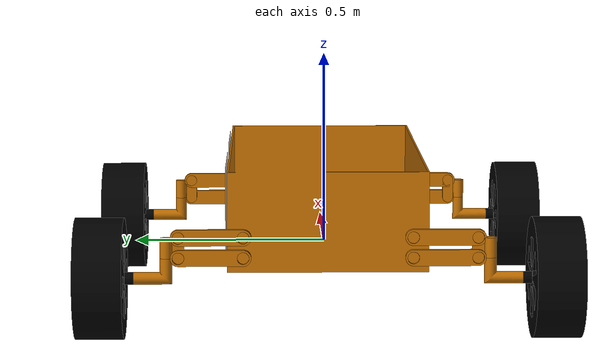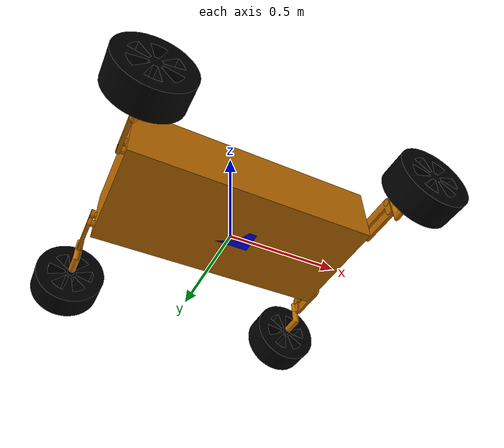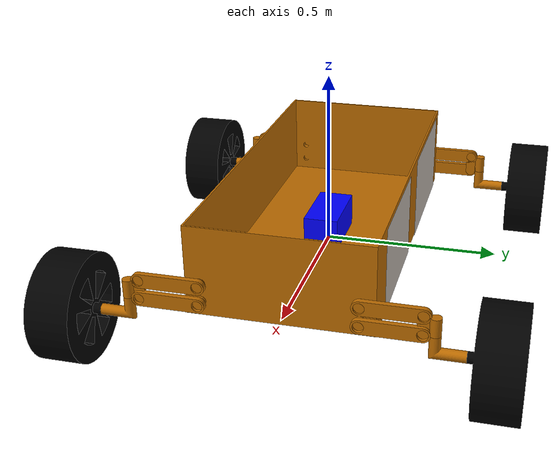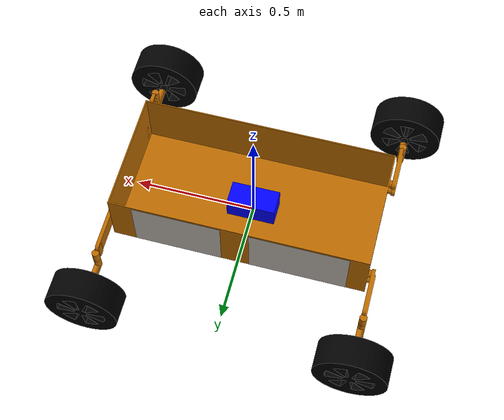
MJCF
<mujoco model="spaceroverMCL">
  <compiler angle="radian" meshdir="assets/meshes/" />

  <option timestep="0.001" integrator="RK4" gravity = "0 0 -1.67" cone="elliptic" impratio="100">
    <flag sensornoise="enable" energy="enable" contact="enable" />
  </option>

  <default>
    <default class="spaceroverMCL">
      <geom friction="0.6" margin="0.001" condim="1"/>
      <joint axis="0 0 -1" armature="0.01" damping="2" stiffness="0" frictionloss="1"/>

      <default class="sus_joint">
        <joint range="-1.0472 1.0472"/>
      </default>

      <default class="steer_joint">
        <joint range="-1.0472 1.0472"/>
      </default>

      <default class="visual">
        <geom type="mesh" contype="0" conaffinity="0" group="2"/>
      </default>

      <default class= "collision">
        <geom group="3" priority="1" solimp="0.015 1 0.031" condim="6" friction="0.8 0.02 0.05"/>
      </default>

      <default class="Tire">
        <geom group="4" priority="1" solimp="0.015 1 0.031" condim="6" friction="0.773 0.02 0.2"/>
      </default>

    </default>
  </default>

  <asset>
    <mesh name="trunk" file="base_link.STL"/>
    <mesh name="FL_bot_sus_bar" file="FL_bot_sus_bar.STL"/>
    <mesh name="FL_sus_cover" file="FL_sus_cover.STL"/>
    <mesh name="FL_steer_link" file="FL_steer_link.STL"/>
    <mesh name="FL_wheel" file="FL_wheel.STL"/>
    <mesh name="FR_bot_sus_bar" file="FR_bot_sus_bar.STL"/>
    <mesh name="FR_sus_cover" file="FR_sus_cover.STL"/>
    <mesh name="FR_steer_link" file="FR_steer_link.STL"/>
    <mesh name="FR_wheel" file="FR_wheel.STL"/>
    <mesh name="RL_bot_sus_bar" file="RL_bot_sus_bar.STL"/>
    <mesh name="RL_sus_cover" file="RL_sus_cover.STL"/>
    <mesh name="RL_steer_link" file="RL_steer_link.STL"/>
    <mesh name="RL_wheel" file="RL_wheel.STL"/>
    <mesh name="RR_bot_sus_bar" file="RR_bot_sus_bar.STL"/>
    <mesh name="RR_sus_cover" file="RR_sus_cover.STL"/>
    <mesh name="RR_steer_link" file="RR_steer_link.STL"/>
    <mesh name="RR_wheel" file="RR_wheel.STL"/>

    <texture name="Dgist" type="2d" file="Dgist_Logo.png"/>
    <texture name="Mcl" type="2d" file="Mcl_Logo.png"/>
    <texture name="Car_num" type="2d" file="Car_num.png"/>

    <material name="Dgist_Mark" texture="Dgist" reflectance="0.2" shininess="0.1"/>
    <material name="Mcl_Mark" texture="Mcl" reflectance="0.2" shininess="0.1"/>
    <material name="Car_num_Mark" texture="Car_num" reflectance="0.2" shininess="0.1"/>

  </asset>

  <worldbody>
    <light diffuse=".5 .5 .5" pos="0 0 3" dir="0 0 -1"/>
    <body name="trunk" pos="0 0 0" euler="0 0 0">
      <inertial pos="-1.7694E-15 -6.6613E-16 0.076193" euler="0 0 0" mass="94" diaginertia="4.1052 12.572 15.42"/>
      <freejoint/>
      <site type="box" name="imu" pos="0 0 0.05" size="0.1 0.05 0.05" rgba="0 0 1 1" />
      <geom class="visual" mesh="trunk" rgba="0.7373 0.4196 0 1" />
      <geom class="visual" type="box" pos="0.24735 0.255 0.13" size="0.18 0.12 0.00000001" euler="1.571 3.1416 0" material="Dgist_Mark" />
      <geom class="visual" type="box" pos="-0.24735 0.255 0.13" size="0.2 0.12 0.00000001" euler="1.571 3.1416 0" material="Mcl_Mark" />

      <geom type="box" pos="0 0 0.1" size="0.525 0.25 0.1" class="collision"/>

      <body name="FL_bot_sus_bar" pos="0.54 0.21 0.04" quat="0.5 -0.5 0.5 -0.5">
        <inertial pos="-0.08 -0.025 0.005" quat="0 0.707107 0 0.707107" mass="5.56431" diaginertia="0.0136372 0.0129398 0.000906033"/>
        <joint name="FL_sus_act" pos="0 0 0" axis="0 0 1"/>
        <geom class="visual" rgba="0.7373 0.4196 0 1" mesh="FL_bot_sus_bar"/>
        <geom type="capsule" pos="-0.06 0 0.015" euler="0 1.5708 0" size="0.02 0.09" class="collision"/>

        <body name="FL_sus_cover" pos="-0.16 0 0.005">
          <inertial pos="-0.0184682 -0.025 -0.00192197" quat="0.5 0.5 -0.5 0.5" mass="1.7057" diaginertia="0.000625818 0.000586045 0.00016883"/>
          <joint name="FL_sus_link_joint" pos="0 0 0" axis="0 0 1"/>
          <geom class="visual" rgba="0.7373 0.4196 0 1" mesh="FL_sus_cover"/>

          <body name="FL_steer_link" pos="-0.03 0 0" quat="0.707107 0.707107 0 0">
            <inertial pos="-0.0239659 -2.29029e-09 -0.0410337" quat="0.581915 0.401715 0.401715 0.581915" mass="2.73012" diaginertia="0.00282515 0.00245109 0.000681196"/>
            <joint name="FL_steer_rev" pos="0 0 0" axis="0 0 1"/>
            <geom class="visual" rgba="0.7373 0.4196 0 1" mesh="FL_steer_link"/>
            <geom type="cylinder" pos="0.00001 0 -0.001" size="0.015 0.06" class="collision"/>

            <body name="FL_wheel" pos="-0.08 0 -0.05" quat="0 -0.707107 0 0.707107">
              <inertial pos="0 0 0.0824387" quat="0.5 0.5 -0.5 0.5" mass="5.00004" diaginertia="0.0656933 0.0388687 0.0388687"/>
              <joint name="FL_drive_act" pos="0 0 0" axis="0 0 1"/>
              <geom class="visual" rgba="0. 0. 0. 1" mesh="FL_wheel"/>
              <geom type="ellipsoid" pos="0 0 0.0823537" size="0.15 0.15 0.06" class="Tire" />

              <site type="cylinder" name="end_point_FL" pos="0 0 0.0823537" euler="0 0 0.6981" size="0.15 0.06" rgba="0 0 1 0" />

            </body>
          </body>
        </body>
      </body>

      <body name="FR_bot_sus_bar" pos="0.54 -0.21 0.04" quat="0.5 -0.5 0.5 -0.5">
        <inertial pos="0.08 -0.025 0.005" quat="0 0.707107 0 0.707107" mass="5.56431" diaginertia="0.0136372 0.0129398 0.000906033"/>
        <joint name="FR_sus_act" pos="0 0 0" axis="0 0 -1"/>
        <geom class="visual" rgba="0.7373 0.4196 0 1" mesh="FR_bot_sus_bar"/>
        <geom type="capsule" pos="0.06 0 0.015" euler="0 1.5708 0" size="0.02 0.09" class="collision"/>

        <body name="FR_sus_cover" pos="0.16 0 0.005">
          <inertial pos="0.0184682 -0.025 -0.00192197" quat="0.5 0.5 -0.5 0.5" mass="1.7057" diaginertia="0.000625818 0.000586045 0.00016883"/>
          <joint name="FR_sus_link_joint" pos="0 0 0" axis="0 0 -1"/>
          <geom class="visual" rgba="0.7373 0.4196 0 1" mesh="FR_sus_cover"/>

          <body name="FR_steer_link" pos="0.03 0 0" quat="0.707107 0.707107 0 0">
            <inertial pos="0.0239659 2.29029e-09 -0.0410337" quat="0.401715 0.581915 0.581915 0.401715" mass="2.73012" diaginertia="0.00282515 0.00245109 0.000681196"/>
            <joint name="FR_steer_rev" pos="0 0 0" axis="0 0 1"/>
            <geom class="visual" rgba="0.7373 0.4196 0 1" mesh="FR_steer_link"/>
            <geom type="cylinder" pos="0.00001 0 -0.001" size="0.015 0.06" class="collision"/>

            <body name="FR_wheel" pos="0.08 0 -0.05" quat="0.5 -0.5 -0.5 0.5">
              <inertial pos="0 0 -0.0824387" quat="0.5 0.5 -0.5 0.5" mass="5.00004" diaginertia="0.0656933 0.0388687 0.0388687"/>
              <joint name="FR_drive_act" pos="0 0 0" axis="0 0 1"/>
              <geom class="visual" rgba="0. 0. 0. 1" mesh="FR_wheel"/>
              <geom type="ellipsoid" pos="0 0 -0.0823537" size="0.15 0.15 0.06" class="Tire"/>

              <site type="cylinder" name="end_point_FR" pos="0 0 -0.0823537" size="0.15 0.06" rgba="0 0 1 0" />

            </body>
          </body>
        </body>
      </body>

      <body name="RL_bot_sus_bar" pos="-0.54 0.21 0.04" quat="0.5 -0.5 0.5 -0.5">
        <inertial pos="-0.08 -0.025 -0.005" quat="0 0.707107 0 0.707107" mass="5.56431" diaginertia="0.0136372 0.0129398 0.000906033"/>
        <joint name="RL_sus_act" pos="0 0 0" axis="0 0 1"/>
        <geom class="visual" rgba="0.7373 0.4196 0 1" mesh="RL_bot_sus_bar"/>
        <geom type="capsule" pos="-0.06 0 -0.015" euler="0 1.5708 0" size="0.02 0.09" class="collision"/>

        <body name="RL_sus_cover" pos="-0.16 0 -0.005">
          <inertial pos="-0.0184682 -0.025 0.00192197" quat="0.5 0.5 -0.5 0.5" mass="1.7057" diaginertia="0.000625818 0.000586045 0.00016883"/>
          <joint name="RL_sus_link_joint" pos="0 0 0" axis="0 0 1"/>
          <geom type="mesh" rgba="0.7373 0.4196 0 1" mesh="RL_sus_cover"/>

          <body name="RL_steer_link" pos="-0.03 0 0" quat="0.707107 0.707107 0 0">
            <inertial pos="-0.0239659 -2.29029e-09 -0.0410337" quat="0.581915 0.401715 0.401715 0.581915" mass="2.73012" diaginertia="0.00282515 0.00245109 0.000681196"/>
            <joint name="RL_steer_rev" pos="0 0 0" axis="0 0 1"/>
            <geom class="visual" rgba="0.7373 0.4196 0 1" mesh="RL_steer_link"/>
            <geom type="cylinder" pos="0.00001 0 -0.001" size="0.015 0.06" class="collision"/>

            <body name="RL_wheel" pos="-0.08 0 -0.05" quat="0 -0.707107 0 0.707107">
              <inertial pos="0 0 0.0824387" quat="0.5 0.5 -0.5 0.5" mass="5.00004" diaginertia="0.0656933 0.0388687 0.0388687"/>
              <joint name="RL_drive_act" pos="0 0 0" axis="0 0 1"/>
              <geom class="visual" rgba="0. 0. 0. 1" mesh="RL_wheel"/>
              <geom type="ellipsoid" pos="0 0 0.0823537" size="0.15 0.15 0.06" class="Tire"/>

              <site type="cylinder" name="end_point_RL" pos="0 0 0.0823537" size="0.15 0.06" rgba="0 0 1 0" />

            </body>
          </body>
        </body>
      </body>

      <body name="RR_bot_sus_bar" pos="-0.54 -0.21 0.04" quat="0.5 -0.5 0.5 -0.5">
        <inertial pos="0.08 -0.025 -0.005" quat="0 0.707107 0 0.707107" mass="5.56431" diaginertia="0.0136372 0.0129398 0.000906033"/>
        <joint name="RR_sus_act" pos="0 0 0" axis="0 0 -1"/>
        <geom class="visual" rgba="0.7373 0.4196 0 1" mesh="RR_bot_sus_bar"/>
        <geom type="capsule" pos="0.06 0 -0.015" euler="0 1.5708 0" size="0.02 0.09" class="collision"/>

        <body name="RR_sus_cover" pos="0.16 0 -0.005">
          <inertial pos="0.0184682 -0.025 0.00192197" quat="0.5 0.5 -0.5 0.5" mass="1.7057" diaginertia="0.000625818 0.000586045 0.00016883"/>
          <joint name="RR_sus_link_joint" pos="0 0 0" axis="0 0 -1"/>
          <geom class="visual" rgba="0.7373 0.4196 0 1" mesh="RR_sus_cover"/>

          <body name="RR_steer_link" pos="0.03 0 0" quat="0.707107 0.707107 0 0">
            <inertial pos="0.0239659 2.29029e-09 -0.0410337" quat="0.401715 0.581915 0.581915 0.401715" mass="2.73012" diaginertia="0.00282515 0.00245109 0.000681196"/>

            <joint name="RR_steer_rev" pos="0 0 0" axis="0 0 1"/>
            <geom class="visual" rgba="0.7373 0.4196 0 1" mesh="RR_steer_link"/>
            <geom type="cylinder" pos="0.00001 0 -0.001" size="0.015 0.06" class="collision"/>

            <body name="RR_wheel" pos="0.08 0 -0.05" quat="0.5 0.5 -0.5 -0.5">
              <inertial pos="0 0 -0.0824387" quat="0.5 0.5 -0.5 0.5" mass="5.00004" diaginertia="0.0656933 0.0388687 0.0388687"/>
              <joint name="RR_drive_act" pos="0 0 0" axis="0 0 1"/>
              <geom class="visual" rgba="0. 0. 0. 1" mesh="RR_wheel"/>
              <geom type="ellipsoid" pos="0 0 -0.0823537" size="0.15 0.15 0.06" class="Tire"/>

              <site type="cylinder" name="end_point_RR" pos="0 0 -0.0823537" size="0.15 0.06" rgba="0 0 1 0" />

            </body>
          </body>
        </body>
      </body>
    </body>
  </worldbody>

  <actuator>
    <motor name="FL_sus_motor" joint="FL_sus_act" gear="1" ctrlrange="-100 100" />
    <motor name="FL_cover_motor" joint="FL_sus_link_joint" gear="1" ctrlrange="-100 100" />
    <motor name="FL_steer_motor" joint="FL_steer_rev" gear="1" ctrlrange="-100 100" />
    <motor name="FL_drive_motor" joint="FL_drive_act" gear="1" ctrlrange="-100 100" />

    <motor name="FR_sus_motor" joint="FR_sus_act" gear="1" ctrlrange="-100 100" />
    <motor name="FR_cover_motor" joint="FR_sus_link_joint" gear="1" ctrlrange="-100 100" />
    <motor name="FR_steer_motor" joint="FR_steer_rev" gear="1" ctrlrange="-100 100" />
    <motor name="FR_drive_motor" joint="FR_drive_act" gear="1" ctrlrange="-100 100" />

    <motor name="RL_sus_motor" joint="RL_sus_act" gear="1" ctrlrange="-100 100" />
    <motor name="RL_cover_motor" joint="RL_sus_link_joint" gear="1" ctrlrange="-100 100" />
    <motor name="RL_steer_motor" joint="RL_steer_rev" gear="1" ctrlrange="-100 100" />
    <motor name="RL_drive_motor" joint="RL_drive_act" gear="1" ctrlrange="-100 100" />

    <motor name="RR_sus_motor" joint="RR_sus_act" gear="1" ctrlrange="-100 100" />
    <motor name="RR_cover_motor" joint="RR_sus_link_joint" gear="1" ctrlrange="-100 100" />
    <motor name="RR_steer_motor" joint="RR_steer_rev" gear="1" ctrlrange="-100 100" />
    <motor name="RR_drive_motor" joint="RR_drive_act" gear="1" ctrlrange="-100 100" />
  </actuator>

  <sensor>
    <accelerometer site="imu" name="imu_acc" noise="0.0" />
    <gyro site="imu" name="imu_gyro" noise="0.0" />
    <framelinvel name="trunk_vel" objtype="site" objname="imu" />
    <frameangvel name="trunk_angvel" objtype="site" objname="imu" />
    <framepos name="trunk_pos" objtype="site" objname="imu" />
    <framequat name="trunk_ang" objtype="site" objname="imu" />

    <jointpos joint="FL_sus_act" name="ENC_FL_sus" noise="0.0" />
    <jointpos joint="FL_steer_rev" name="ENC_FL_steer" noise="0.0" />
    <jointpos joint="FL_drive_act" name="ENC_FL_drive" noise="0.0" />

    <jointpos joint="FR_sus_act" name="ENC_FR_sus" noise="0.0" />
    <jointpos joint="FR_steer_rev" name="ENC_FR_steer" noise="0.0" />
    <jointpos joint="FR_drive_act" name="ENC_FR_drive" noise="0.0" />

    <jointpos joint="RL_sus_act" name="ENC_RL_sus" noise="0.0" />
    <jointpos joint="RL_steer_rev" name="ENC_RL_steer" noise="0.0" />
    <jointpos joint="RL_drive_act" name="ENC_RL_drive" noise="0.0" />

    <jointpos joint="RR_sus_act" name="ENC_RR_sus" noise="0.0" />
    <jointpos joint="RR_steer_rev" name="ENC_RR_steer" noise="0.0" />
    <jointpos joint="RR_drive_act" name="ENC_RR_drive" noise="0.0" />

    <touch name="touch_sensor_FL" site="end_point_FL" />
    <force name="grf_seonsor_FL" site="end_point_FL" />

    <touch name="touch_FR" site="end_point_FR" />
    <force name="grf_seonsor_FR" site="end_point_FR" />

    <touch name="touch_RL" site="end_point_RL" />
    <force name="grf_seonsor_RL" site="end_point_RL" />

    <touch name="touch_RR" site="end_point_RR" />
    <force name="grf_seonsor_RR" site="end_point_RR" />

  </sensor>

  <keyframe>
    <key name="home" qpos="0 0 0.15 0 0 0 0 0 0 0 0 0 0 0 0 0 0 0 0 0 0 0 0"/>
  </keyframe>

</mujoco>
